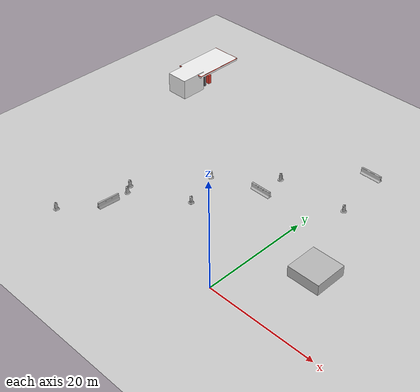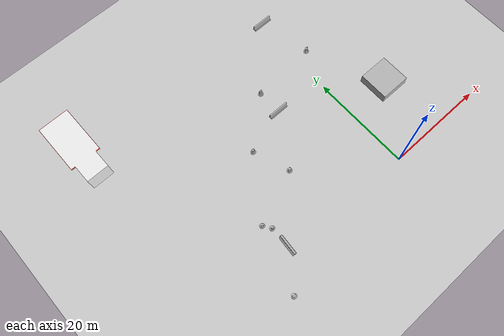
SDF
<sdf version="1.7">
 <world name="default">
  <model name="ground_plane">
   <static>1</static>
   <link name="link">
    <collision name="collision">
     <geometry><plane><normal>0 0 1</normal><size>100 100</size></plane></geometry>
     <surface><friction><ode><mu>100</mu><mu2>50</mu2></ode></friction></surface>
    </collision>
    <visual name="visual">
     <cast_shadows>0</cast_shadows>
     <geometry><plane><normal>0 0 1</normal><size>100 100</size></plane></geometry>
     <material>
      <script><uri>file://media/materials/scripts/gazebo.material</uri><name>Gazebo/Grey</name></script>
     </material>
    </visual>
    <velocity_decay><linear>0</linear><angular>0</angular></velocity_decay>
   </link>
  </model>
  <model name="Construction Barrel_2">
   <link name="link">
    <inertial>
     <pose>0 0 0.4 0 -0 0</pose>
     <mass>500</mass>
     <inertia><ixx>51.2096</ixx><iyy>51.2096</iyy><izz>25</izz><ixy>0</ixy><ixz>0</ixz><iyz>0</iyz></inertia>
    </inertial>
    <collision name="collision">
     <geometry><mesh><uri>model://construction_barrel/meshes/construction_barrel.dae</uri></mesh></geometry>
    </collision>
    <visual name="visual">
     <geometry><mesh><uri>model://construction_barrel/meshes/construction_barrel.dae</uri></mesh></geometry>
    </visual>
    <velocity_decay><linear>0</linear><angular>0</angular></velocity_decay>
   </link>
   <pose>-16.4512 11.8635 -1e-06 3e-06 -2e-06 0.185253</pose>
   <static>0</static>
  </model>
  <model name="Construction Barrel_5">
   <link name="link">
    <inertial>
     <pose>0 0 0.4 0 -0 0</pose>
     <mass>500</mass>
     <inertia><ixx>51.2096</ixx><iyy>51.2096</iyy><izz>25</izz><ixy>0</ixy><ixz>0</ixz><iyz>0</iyz></inertia>
    </inertial>
    <collision name="collision">
     <geometry><mesh><uri>model://construction_barrel/meshes/construction_barrel.dae</uri></mesh></geometry>
    </collision>
    <visual name="visual">
     <geometry><mesh><uri>model://construction_barrel/meshes/construction_barrel.dae</uri></mesh></geometry>
    </visual>
    <velocity_decay><linear>0</linear><angular>0</angular></velocity_decay>
   </link>
   <pose>-27.0002 7.54618 -0 0 -0 -0.001731</pose>
   <static>0</static>
  </model>
  <model name="Construction Barrel_6">
   <link name="link">
    <inertial>
     <pose>0 0 0.4 0 -0 0</pose>
     <mass>500</mass>
     <inertia><ixx>51.2096</ixx><iyy>51.2096</iyy><izz>25</izz><ixy>0</ixy><ixz>0</ixz><iyz>0</iyz></inertia>
    </inertial>
    <collision name="collision">
     <geometry><mesh><uri>model://construction_barrel/meshes/construction_barrel.dae</uri></mesh></geometry>
    </collision>
    <visual name="visual">
     <geometry><mesh><uri>model://construction_barrel/meshes/construction_barrel.dae</uri></mesh></geometry>
    </visual>
    <velocity_decay><linear>0</linear><angular>0</angular></velocity_decay>
   </link>
   <pose>-10.0001 27.0008 -0 0 -0 -0.001739</pose>
   <static>0</static>
  </model>
  <model name="Construction Barrel_7">
   <link name="link">
    <inertial>
     <pose>0 0 0.4 0 -0 0</pose>
     <mass>500</mass>
     <inertia><ixx>51.2096</ixx><iyy>51.2096</iyy><izz>25</izz><ixy>0</ixy><ixz>0</ixz><iyz>0</iyz></inertia>
    </inertial>
    <collision name="collision">
     <geometry><mesh><uri>model://construction_barrel/meshes/construction_barrel.dae</uri></mesh></geometry>
    </collision>
    <visual name="visual">
     <geometry><mesh><uri>model://construction_barrel/meshes/construction_barrel.dae</uri></mesh></geometry>
    </visual>
    <velocity_decay><linear>0</linear><angular>0</angular></velocity_decay>
   </link>
   <pose>-31.0001 -4.99918 -0 0 -0 -0.001652</pose>
   <static>0</static>
  </model>
  <model name="Construction Barrel_9">
   <link name="link">
    <inertial>
     <pose>0 0 0.4 0 -0 0</pose>
     <mass>500</mass>
     <inertia><ixx>51.2096</ixx><iyy>51.2096</iyy><izz>25</izz><ixy>0</ixy><ixz>0</ixz><iyz>0</iyz></inertia>
    </inertial>
    <collision name="collision">
     <geometry><mesh><uri>model://construction_barrel/meshes/construction_barrel.dae</uri></mesh></geometry>
    </collision>
    <visual name="visual">
     <geometry><mesh><uri>model://construction_barrel/meshes/construction_barrel.dae</uri></mesh></geometry>
    </visual>
    <velocity_decay><linear>0</linear><angular>0</angular></velocity_decay>
   </link>
   <pose>-25.9697 6.05996 0 0 -0 -0.001516</pose>
   <static>0</static>
  </model>
  <model name="Construction Barrel_14">
   <link name="link">
    <inertial>
     <pose>0 0 0.4 0 -0 0</pose>
     <mass>500</mass>
     <inertia><ixx>51.2096</ixx><iyy>51.2096</iyy><izz>25</izz><ixy>0</ixy><ixz>0</ixz><iyz>0</iyz></inertia>
    </inertial>
    <collision name="collision">
     <geometry><mesh><uri>model://construction_barrel/meshes/construction_barrel.dae</uri></mesh></geometry>
    </collision>
    <visual name="visual">
     <geometry><mesh><uri>model://construction_barrel/meshes/construction_barrel.dae</uri></mesh></geometry>
    </visual>
    <velocity_decay><linear>0</linear><angular>0</angular></velocity_decay>
   </link>
   <pose>-19 19.0005 0 0 0 -0.001237</pose>
   <static>0</static>
  </model>
  <model name="Construction Barrel_16">
   <link name="link">
    <inertial>
     <pose>0 0 0.4 0 -0 0</pose>
     <mass>500</mass>
     <inertia><ixx>51.2096</ixx><iyy>51.2096</iyy><izz>25</izz><ixy>0</ixy><ixz>0</ixz><iyz>0</iyz></inertia>
    </inertial>
    <collision name="collision">
     <geometry><mesh><uri>model://construction_barrel/meshes/construction_barrel.dae</uri></mesh></geometry>
    </collision>
    <visual name="visual">
     <geometry><mesh><uri>model://construction_barrel/meshes/construction_barrel.dae</uri></mesh></geometry>
    </visual>
    <velocity_decay><linear>0</linear><angular>0</angular></velocity_decay>
   </link>
   <pose>2.99988 28.0005 0 0 0 -0.001111</pose>
   <static>0</static>
  </model>
  <model name="jersey_barrier">
   <static>1</static>
   <link name="link">
    <visual name="visual">
     <geometry><mesh><uri>model://jersey_barrier/meshes/jersey_barrier.dae</uri></mesh></geometry>
    </visual>
    <collision name="upright">
     <pose>0 0 0.5715 0 -0 0</pose>
     <geometry><box><size>4.06542 0.3063 1.143</size></box></geometry>
    </collision>
    <collision name="base">
     <pose>0 0 0.032258 0 -0 0</pose>
     <geometry><box><size>4.06542 0.8107 0.064516</size></box></geometry>
    </collision>
    <collision name="base2">
     <pose>0 0 0.1 0 -0 0</pose>
     <geometry><box><size>4.06542 0.65 0.1</size></box></geometry>
    </collision>
    <collision name="base3">
     <pose>0 0 0.2 0 -0 0</pose>
     <geometry><box><size>4.06542 0.5 0.1</size></box></geometry>
    </collision>
    <collision name="left-angle">
     <pose>0 -0.224 0.2401 0.9 -0 0</pose>
     <geometry><box><size>4.06542 0.5 0.064516</size></box></geometry>
    </collision>
    <collision name="right-angle">
     <pose>0 0.224 0.2401 -0.9 0 0</pose>
     <geometry><box><size>4.06542 0.5 0.064516</size></box></geometry>
    </collision>
    <velocity_decay><linear>0</linear><angular>0</angular></velocity_decay>
   </link>
   <pose>0.597215 38.5354 0 0 -0 0</pose>
  </model>
  <model name="jersey_barrier_0">
   <static>1</static>
   <link name="link">
    <visual name="visual">
     <geometry><mesh><uri>model://jersey_barrier/meshes/jersey_barrier.dae</uri></mesh></geometry>
    </visual>
    <collision name="upright">
     <pose>0 0 0.5715 0 -0 0</pose>
     <geometry><box><size>4.06542 0.3063 1.143</size></box></geometry>
    </collision>
    <collision name="base">
     <pose>0 0 0.032258 0 -0 0</pose>
     <geometry><box><size>4.06542 0.8107 0.064516</size></box></geometry>
    </collision>
    <collision name="base2">
     <pose>0 0 0.1 0 -0 0</pose>
     <geometry><box><size>4.06542 0.65 0.1</size></box></geometry>
    </collision>
    <collision name="base3">
     <pose>0 0 0.2 0 -0 0</pose>
     <geometry><box><size>4.06542 0.5 0.1</size></box></geometry>
    </collision>
    <collision name="left-angle">
     <pose>0 -0.224 0.2401 0.9 -0 0</pose>
     <geometry><box><size>4.06542 0.5 0.064516</size></box></geometry>
    </collision>
    <collision name="right-angle">
     <pose>0 0.224 0.2401 -0.9 0 0</pose>
     <geometry><box><size>4.06542 0.5 0.064516</size></box></geometry>
    </collision>
    <velocity_decay><linear>0</linear><angular>0</angular></velocity_decay>
   </link>
   <pose>-10 22 0 0 -0 0</pose>
  </model>
  <model name="jersey_barrier_1">
   <static>1</static>
   <link name="link">
    <visual name="visual">
     <geometry><mesh><uri>model://jersey_barrier/meshes/jersey_barrier.dae</uri></mesh></geometry>
    </visual>
    <collision name="upright">
     <pose>0 0 0.5715 0 -0 0</pose>
     <geometry><box><size>4.06542 0.3063 1.143</size></box></geometry>
    </collision>
    <collision name="base">
     <pose>0 0 0.032258 0 -0 0</pose>
     <geometry><box><size>4.06542 0.8107 0.064516</size></box></geometry>
    </collision>
    <collision name="base2">
     <pose>0 0 0.1 0 -0 0</pose>
     <geometry><box><size>4.06542 0.65 0.1</size></box></geometry>
    </collision>
    <collision name="base3">
     <pose>0 0 0.2 0 -0 0</pose>
     <geometry><box><size>4.06542 0.5 0.1</size></box></geometry>
    </collision>
    <collision name="left-angle">
     <pose>0 -0.224 0.2401 0.9 -0 0</pose>
     <geometry><box><size>4.06542 0.5 0.064516</size></box></geometry>
    </collision>
    <collision name="right-angle">
     <pose>0 0.224 0.2401 -0.9 0 0</pose>
     <geometry><box><size>4.06542 0.5 0.064516</size></box></geometry>
    </collision>
    <velocity_decay><linear>0</linear><angular>0</angular></velocity_decay>
   </link>
   <pose>-26 2 0 0 -0 1.49459</pose>
  </model>
  <model name="Gas Station">
   <static>1</static>
   <link name="link">
    <collision name="collision">
     <geometry><mesh><uri>model://gas_station/meshes/gas_station.dae</uri></mesh></geometry>
    </collision>
    <visual name="visual">
     <geometry><mesh><uri>model://gas_station/meshes/gas_station.dae</uri></mesh></geometry>
     <material>
      <script>
       <uri>model://gas_station/materials/scripts</uri>
       <uri>model://gas_station/materials/textures</uri>
       <name>GasStation/Diffuse</name>
      </script>
      <shader type="normal_map_tangent_space"><normal_map>GasStation_Normal.png</normal_map></shader>
     </material>
    </visual>
   </link>
   <pose>-42.7504 39.4503 0 0 -0 1.5761</pose>
  </model>
  <model name="box_target_green">
   <pose>9.3602 13.0676 1 0 -0 0</pose>
   <static>1</static>
   <link name="link">
    <collision name="collision"><geometry><box><size>6 6 2</size></box></geometry></collision>
    <visual name="visual">
     <geometry><mesh><uri>model://box_target_green/meshes/mesh.dae</uri></mesh></geometry>
    </visual>
   </link>
  </model>
 </world>
</sdf>
